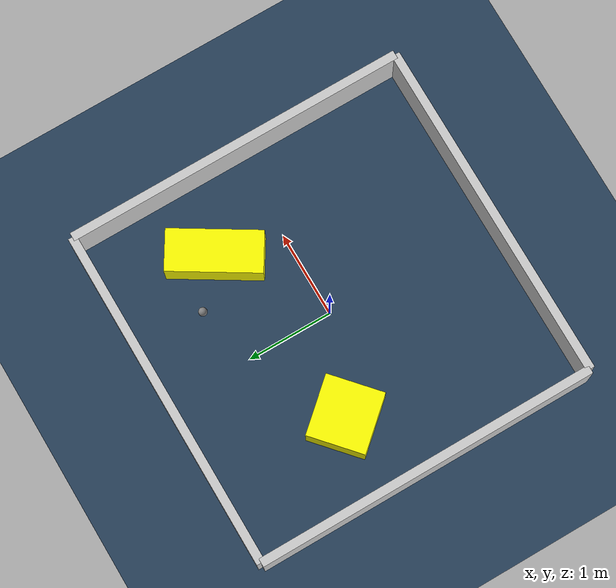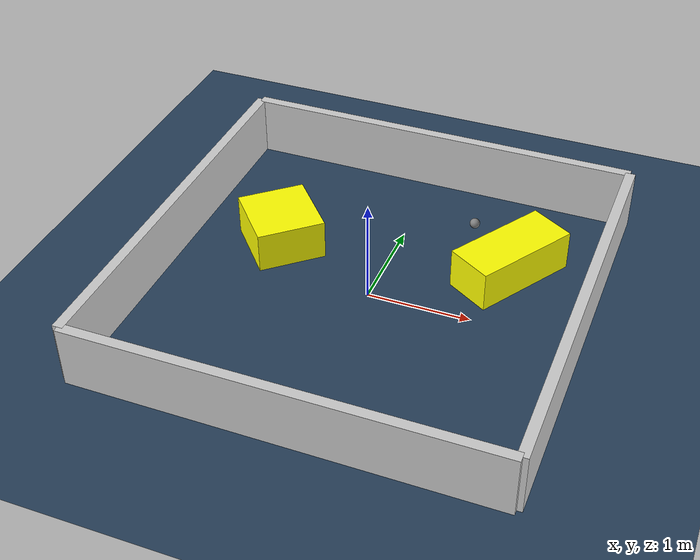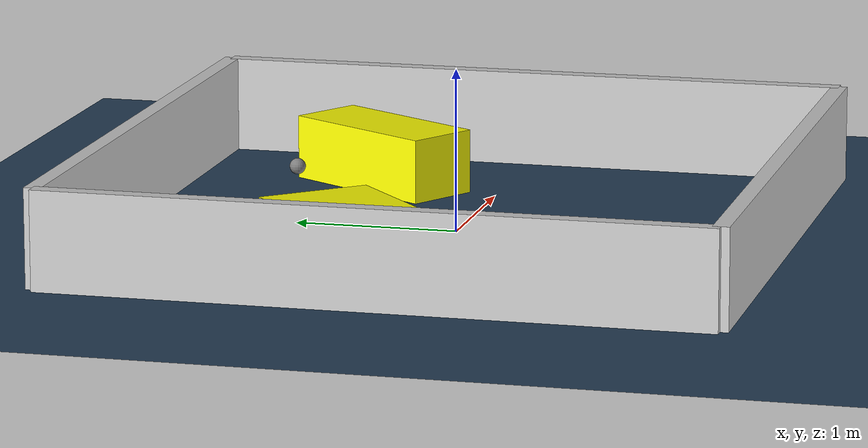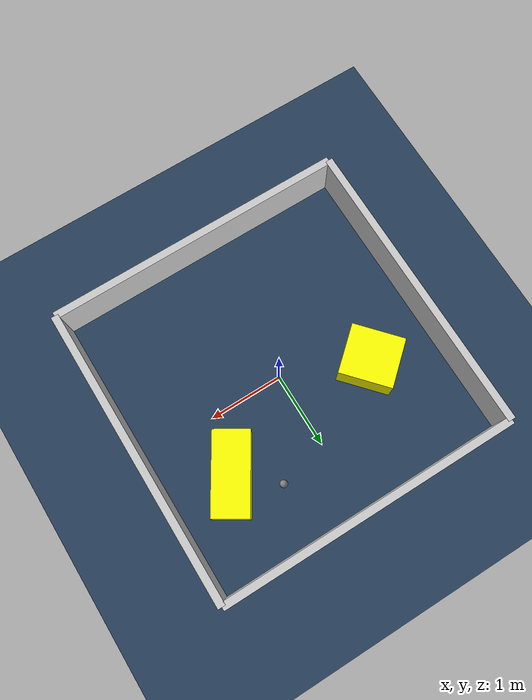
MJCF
<?xml version="1.0" ?>
<mujoco model="generated_environment">
  <option timestep="0.01" integrator="RK4" cone="elliptic"/>
  <default>
    <geom density="1"/>
  </default>
  <asset>
    <texture builtin="gradient" height="3072" rgb1="0.3 0.5 0.7" rgb2="0 0 0" type="skybox" width="512"/>
    <texture builtin="checker" height="300" mark="edge" markrgb="0.8 0.8 0.8" name="groundplane" rgb1="0.2 0.3 0.4" rgb2="0.1 0.2 0.3" type="2d" width="300"/>
    <material name="groundplane" reflectance="0.2" texrepeat="5 5" texture="groundplane" texuniform="true"/>
    <material name="robot" rgba="0.0 1.0 0.0 1"/>
  </asset>
  <worldbody>
    <light dir="0 0 -1" directional="true" pos="0 0 1.5"/>
    <geom condim="4" friction="1.0 0.005 0.001" material="groundplane" name="floor" size="0 0 0.05" type="plane"/>
    <body name="walls">
      <geom name="wall_1" condim="4" pos="-2.0 0.0 0.3" rgba="0.800000011920929 0.800000011920929 0.800000011920929 1.0" size="0.05 2.0 0.3" type="box"/>
      <geom name="wall_2" condim="4" pos="2.0 0.0 0.3" rgba="0.800000011920929 0.800000011920929 0.800000011920929 1.0" size="0.05 2.0 0.3" type="box"/>
      <geom name="wall_3" condim="4" pos="0.0 -2.0 0.3" rgba="0.800000011920929 0.800000011920929 0.800000011920929 1.0" size="2.0 0.05 0.3" type="box"/>
      <geom name="wall_4" condim="4" pos="0.0 2.0 0.3" rgba="0.800000011920929 0.800000011920929 0.800000011920929 1.0" size="2.0 0.05 0.3" type="box"/>
    </body>
    <body name="robot">
      <joint name="joint_x" type="slide" pos="0 0 0" axis="1 0 0"/>
      <joint name="joint_y" type="slide" pos="0 0 0" axis="0 1 0"/>
      <geom name="robot" type="sphere" pos="0.6736986790820096 1.1850503043851037 0.2" size="0.05" mass="5." friction="1.0 0.005 0.0001" condim="4"/>
      <site name="sensor_ball"/>
    </body>
    <body name="obstacle_1_movable">
      <geom name="obstacle_1_movable" condim="4" pos="1.1538159415423266 0.7572084324064767 0.2" euler="0 0 328.3978204840537" friction="1.0 0.005 0.001" rgba="1 1 0 1" size="0.23723575720305995 0.5349930775613845 0.2" type="box" mass="0.1"/>
      <joint type="free"/>
    </body>
    <body name="obstacle_2_movable">
      <geom name="obstacle_2_movable" condim="4" pos="-1.0812131350231877 0.4423175687130949 0.2" euler="0 0 131.4169601403936" friction="1.0 0.005 0.001" rgba="1 1 0 1" size="0.34937358616815384 0.3331449514218798 0.2" type="box" mass="0.1"/>
      <joint type="free"/>
    </body>
  </worldbody>
  <actuator>
    <motor name="actuator_x" joint="joint_x" gear="1" ctrlrange="-1 1"/>
    <motor name="actuator_y" joint="joint_y" gear="1" ctrlrange="-1 1"/>
  </actuator>
</mujoco>
